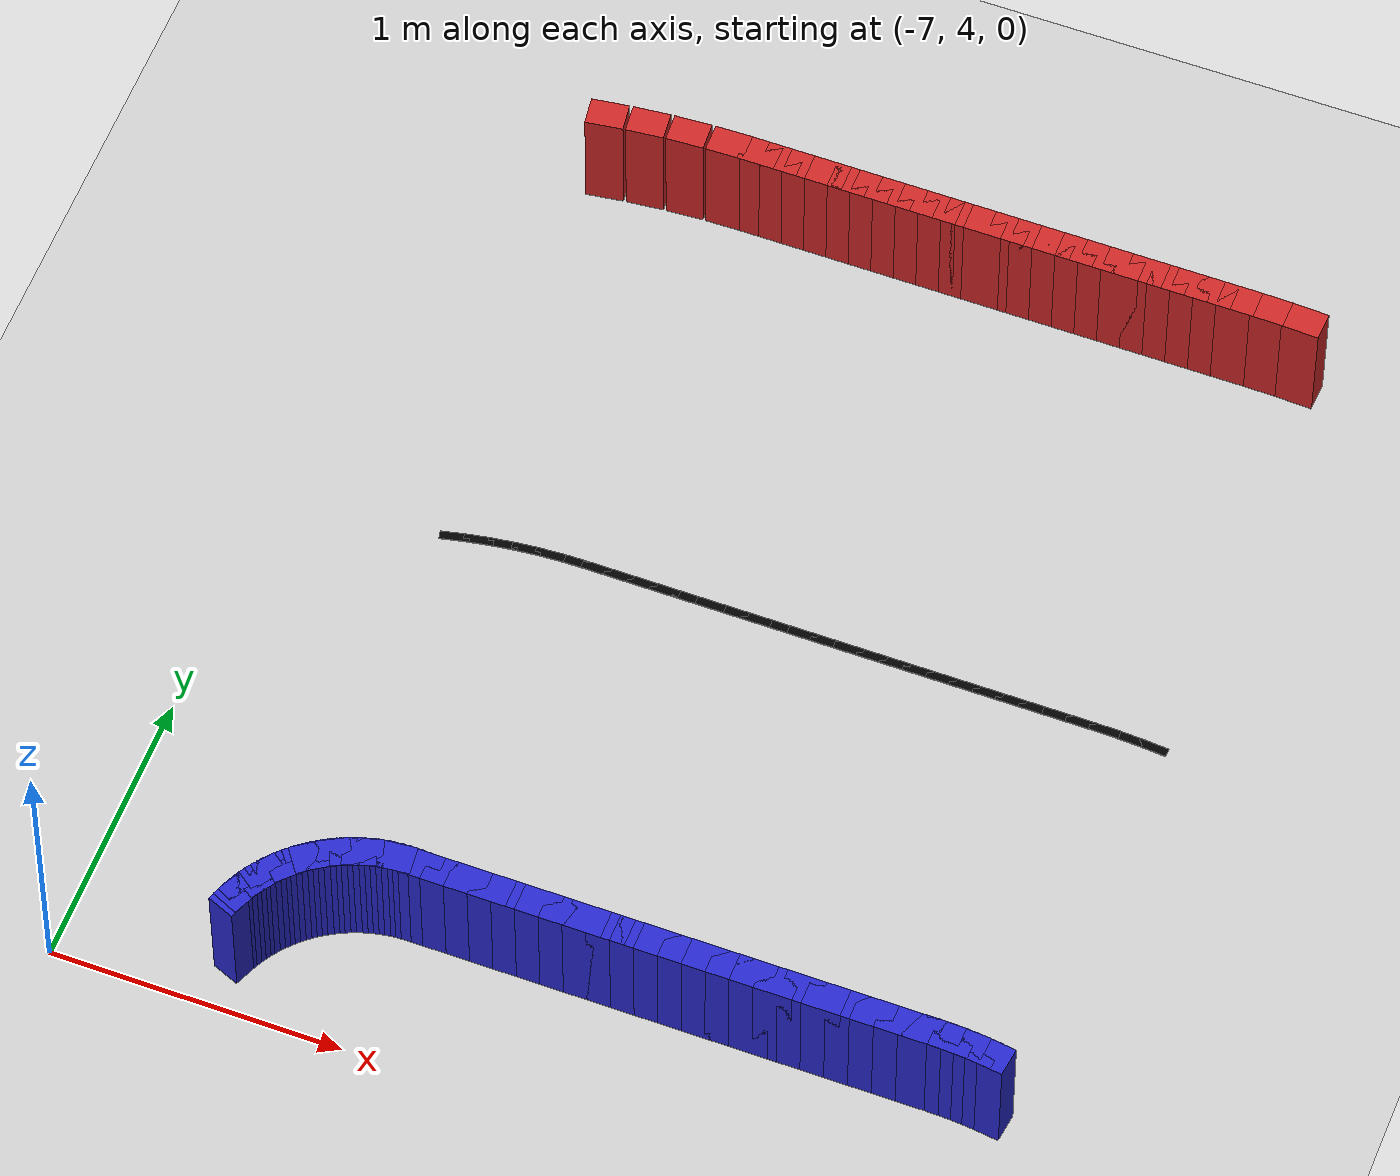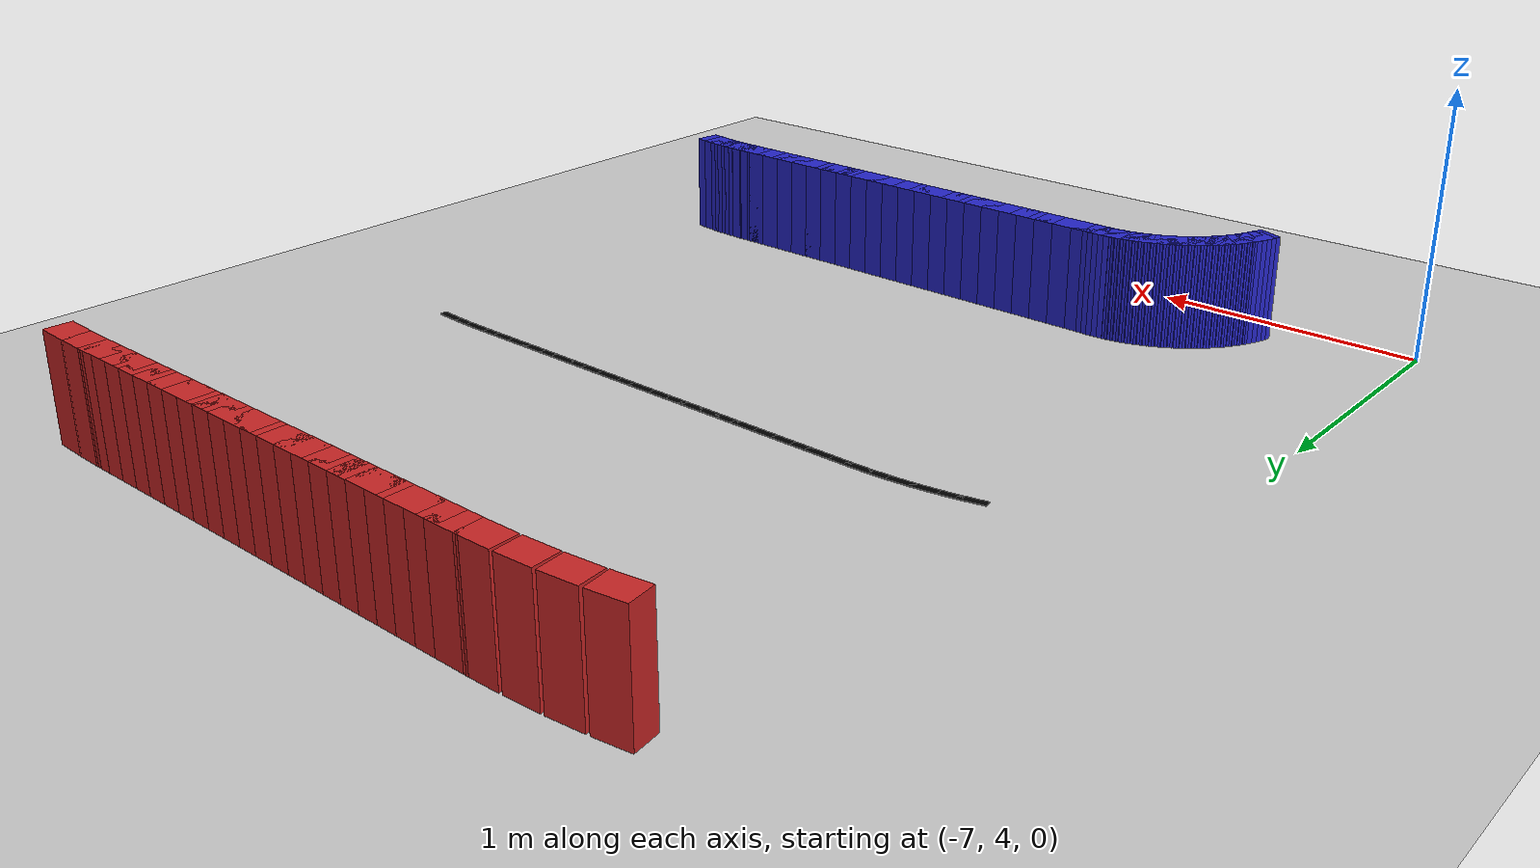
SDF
<sdf version="1.6">
 <world name="new_race_track">
  <include><uri>model://ground_plane</uri></include>
  <include><uri>model://sun</uri></include>
  <model name="iw_667">
   <static>true</static>
   <pose>-4.0152 4.4880 0.200 0 0 3.0166</pose>
   <link name="l">
    <collision name="c"><geometry><box><size>0.1333 0.1 0.4</size></box></geometry></collision>
    <visual name="v">
     <geometry><box><size>0.1333 0.1 0.4</size></box></geometry>
     <material><ambient>0.15 0.15 0.8 1</ambient><diffuse>0.15 0.15 0.8 1</diffuse></material>
    </visual>
   </link>
  </model>
  <model name="iw_668">
   <static>true</static>
   <pose>-4.0566 4.4926 0.200 0 0 3.0444</pose>
   <link name="l">
    <collision name="c"><geometry><box><size>0.1333 0.1 0.4</size></box></geometry></collision>
    <visual name="v">
     <geometry><box><size>0.1333 0.1 0.4</size></box></geometry>
     <material><ambient>0.15 0.15 0.8 1</ambient><diffuse>0.15 0.15 0.8 1</diffuse></material>
    </visual>
   </link>
  </model>
  <model name="iw_669">
   <static>true</static>
   <pose>-4.0981 4.4961 0.200 0 0 3.0722</pose>
   <link name="l">
    <collision name="c"><geometry><box><size>0.1333 0.1 0.4</size></box></geometry></collision>
    <visual name="v">
     <geometry><box><size>0.1333 0.1 0.4</size></box></geometry>
     <material><ambient>0.15 0.15 0.8 1</ambient><diffuse>0.15 0.15 0.8 1</diffuse></material>
    </visual>
   </link>
  </model>
  <model name="iw_670">
   <static>true</static>
   <pose>-4.1396 4.4984 0.200 0 0 3.0999</pose>
   <link name="l">
    <collision name="c"><geometry><box><size>0.1333 0.1 0.4</size></box></geometry></collision>
    <visual name="v">
     <geometry><box><size>0.1333 0.1 0.4</size></box></geometry>
     <material><ambient>0.15 0.15 0.8 1</ambient><diffuse>0.15 0.15 0.8 1</diffuse></material>
    </visual>
   </link>
  </model>
  <model name="iw_671">
   <static>true</static>
   <pose>-4.1813 4.4996 0.200 0 0 3.1277</pose>
   <link name="l">
    <collision name="c"><geometry><box><size>0.1333 0.1 0.4</size></box></geometry></collision>
    <visual name="v">
     <geometry><box><size>0.1333 0.1 0.4</size></box></geometry>
     <material><ambient>0.15 0.15 0.8 1</ambient><diffuse>0.15 0.15 0.8 1</diffuse></material>
    </visual>
   </link>
  </model>
  <model name="iw_672">
   <static>true</static>
   <pose>-4.2421 4.5000 0.200 0 0 3.1416</pose>
   <link name="l">
    <collision name="c"><geometry><box><size>0.1300 0.1 0.4</size></box></geometry></collision>
    <visual name="v">
     <geometry><box><size>0.1300 0.1 0.4</size></box></geometry>
     <material><ambient>0.15 0.15 0.8 1</ambient><diffuse>0.15 0.15 0.8 1</diffuse></material>
    </visual>
   </link>
  </model>
  <model name="iw_673">
   <static>true</static>
   <pose>-4.3221 4.5000 0.200 0 0 3.1416</pose>
   <link name="l">
    <collision name="c"><geometry><box><size>0.1300 0.1 0.4</size></box></geometry></collision>
    <visual name="v">
     <geometry><box><size>0.1300 0.1 0.4</size></box></geometry>
     <material><ambient>0.15 0.15 0.8 1</ambient><diffuse>0.15 0.15 0.8 1</diffuse></material>
    </visual>
   </link>
  </model>
  <model name="iw_674">
   <static>true</static>
   <pose>-4.4021 4.5000 0.200 0 0 3.1416</pose>
   <link name="l">
    <collision name="c"><geometry><box><size>0.1300 0.1 0.4</size></box></geometry></collision>
    <visual name="v">
     <geometry><box><size>0.1300 0.1 0.4</size></box></geometry>
     <material><ambient>0.15 0.15 0.8 1</ambient><diffuse>0.15 0.15 0.8 1</diffuse></material>
    </visual>
   </link>
  </model>
  <model name="iw_675">
   <static>true</static>
   <pose>-4.4821 4.5000 0.200 0 0 3.1416</pose>
   <link name="l">
    <collision name="c"><geometry><box><size>0.1300 0.1 0.4</size></box></geometry></collision>
    <visual name="v">
     <geometry><box><size>0.1300 0.1 0.4</size></box></geometry>
     <material><ambient>0.15 0.15 0.8 1</ambient><diffuse>0.15 0.15 0.8 1</diffuse></material>
    </visual>
   </link>
  </model>
  <model name="iw_676">
   <static>true</static>
   <pose>-4.5621 4.5000 0.200 0 0 3.1416</pose>
   <link name="l">
    <collision name="c"><geometry><box><size>0.1300 0.1 0.4</size></box></geometry></collision>
    <visual name="v">
     <geometry><box><size>0.1300 0.1 0.4</size></box></geometry>
     <material><ambient>0.15 0.15 0.8 1</ambient><diffuse>0.15 0.15 0.8 1</diffuse></material>
    </visual>
   </link>
  </model>
  <model name="iw_677">
   <static>true</static>
   <pose>-4.6421 4.5000 0.200 0 0 3.1416</pose>
   <link name="l">
    <collision name="c"><geometry><box><size>0.1300 0.1 0.4</size></box></geometry></collision>
    <visual name="v">
     <geometry><box><size>0.1300 0.1 0.4</size></box></geometry>
     <material><ambient>0.15 0.15 0.8 1</ambient><diffuse>0.15 0.15 0.8 1</diffuse></material>
    </visual>
   </link>
  </model>
  <model name="iw_678">
   <static>true</static>
   <pose>-4.7221 4.5000 0.200 0 0 3.1416</pose>
   <link name="l">
    <collision name="c"><geometry><box><size>0.1300 0.1 0.4</size></box></geometry></collision>
    <visual name="v">
     <geometry><box><size>0.1300 0.1 0.4</size></box></geometry>
     <material><ambient>0.15 0.15 0.8 1</ambient><diffuse>0.15 0.15 0.8 1</diffuse></material>
    </visual>
   </link>
  </model>
  <model name="iw_679">
   <static>true</static>
   <pose>-4.8021 4.5000 0.200 0 0 3.1416</pose>
   <link name="l">
    <collision name="c"><geometry><box><size>0.1300 0.1 0.4</size></box></geometry></collision>
    <visual name="v">
     <geometry><box><size>0.1300 0.1 0.4</size></box></geometry>
     <material><ambient>0.15 0.15 0.8 1</ambient><diffuse>0.15 0.15 0.8 1</diffuse></material>
    </visual>
   </link>
  </model>
  <model name="iw_680">
   <static>true</static>
   <pose>-4.8821 4.5000 0.200 0 0 3.1416</pose>
   <link name="l">
    <collision name="c"><geometry><box><size>0.1300 0.1 0.4</size></box></geometry></collision>
    <visual name="v">
     <geometry><box><size>0.1300 0.1 0.4</size></box></geometry>
     <material><ambient>0.15 0.15 0.8 1</ambient><diffuse>0.15 0.15 0.8 1</diffuse></material>
    </visual>
   </link>
  </model>
  <model name="iw_681">
   <static>true</static>
   <pose>-4.9621 4.5000 0.200 0 0 3.1416</pose>
   <link name="l">
    <collision name="c"><geometry><box><size>0.1300 0.1 0.4</size></box></geometry></collision>
    <visual name="v">
     <geometry><box><size>0.1300 0.1 0.4</size></box></geometry>
     <material><ambient>0.15 0.15 0.8 1</ambient><diffuse>0.15 0.15 0.8 1</diffuse></material>
    </visual>
   </link>
  </model>
  <model name="iw_682">
   <static>true</static>
   <pose>-5.0421 4.5000 0.200 0 0 3.1416</pose>
   <link name="l">
    <collision name="c"><geometry><box><size>0.1300 0.1 0.4</size></box></geometry></collision>
    <visual name="v">
     <geometry><box><size>0.1300 0.1 0.4</size></box></geometry>
     <material><ambient>0.15 0.15 0.8 1</ambient><diffuse>0.15 0.15 0.8 1</diffuse></material>
    </visual>
   </link>
  </model>
  <model name="iw_683">
   <static>true</static>
   <pose>-5.1221 4.5000 0.200 0 0 3.1416</pose>
   <link name="l">
    <collision name="c"><geometry><box><size>0.1300 0.1 0.4</size></box></geometry></collision>
    <visual name="v">
     <geometry><box><size>0.1300 0.1 0.4</size></box></geometry>
     <material><ambient>0.15 0.15 0.8 1</ambient><diffuse>0.15 0.15 0.8 1</diffuse></material>
    </visual>
   </link>
  </model>
  <model name="iw_684">
   <static>true</static>
   <pose>-5.2021 4.5000 0.200 0 0 3.1416</pose>
   <link name="l">
    <collision name="c"><geometry><box><size>0.1300 0.1 0.4</size></box></geometry></collision>
    <visual name="v">
     <geometry><box><size>0.1300 0.1 0.4</size></box></geometry>
     <material><ambient>0.15 0.15 0.8 1</ambient><diffuse>0.15 0.15 0.8 1</diffuse></material>
    </visual>
   </link>
  </model>
  <model name="iw_685">
   <static>true</static>
   <pose>-5.2821 4.5000 0.200 0 0 3.1416</pose>
   <link name="l">
    <collision name="c"><geometry><box><size>0.1300 0.1 0.4</size></box></geometry></collision>
    <visual name="v">
     <geometry><box><size>0.1300 0.1 0.4</size></box></geometry>
     <material><ambient>0.15 0.15 0.8 1</ambient><diffuse>0.15 0.15 0.8 1</diffuse></material>
    </visual>
   </link>
  </model>
  <model name="iw_686">
   <static>true</static>
   <pose>-5.3621 4.5000 0.200 0 0 3.1416</pose>
   <link name="l">
    <collision name="c"><geometry><box><size>0.1300 0.1 0.4</size></box></geometry></collision>
    <visual name="v">
     <geometry><box><size>0.1300 0.1 0.4</size></box></geometry>
     <material><ambient>0.15 0.15 0.8 1</ambient><diffuse>0.15 0.15 0.8 1</diffuse></material>
    </visual>
   </link>
  </model>
  <model name="iw_687">
   <static>true</static>
   <pose>-5.4421 4.5000 0.200 0 0 3.1416</pose>
   <link name="l">
    <collision name="c"><geometry><box><size>0.1300 0.1 0.4</size></box></geometry></collision>
    <visual name="v">
     <geometry><box><size>0.1300 0.1 0.4</size></box></geometry>
     <material><ambient>0.15 0.15 0.8 1</ambient><diffuse>0.15 0.15 0.8 1</diffuse></material>
    </visual>
   </link>
  </model>
  <model name="iw_688">
   <static>true</static>
   <pose>-5.5221 4.5000 0.200 0 0 3.1416</pose>
   <link name="l">
    <collision name="c"><geometry><box><size>0.1300 0.1 0.4</size></box></geometry></collision>
    <visual name="v">
     <geometry><box><size>0.1300 0.1 0.4</size></box></geometry>
     <material><ambient>0.15 0.15 0.8 1</ambient><diffuse>0.15 0.15 0.8 1</diffuse></material>
    </visual>
   </link>
  </model>
  <model name="iw_689">
   <static>true</static>
   <pose>-5.6021 4.5000 0.200 0 0 3.1416</pose>
   <link name="l">
    <collision name="c"><geometry><box><size>0.1300 0.1 0.4</size></box></geometry></collision>
    <visual name="v">
     <geometry><box><size>0.1300 0.1 0.4</size></box></geometry>
     <material><ambient>0.15 0.15 0.8 1</ambient><diffuse>0.15 0.15 0.8 1</diffuse></material>
    </visual>
   </link>
  </model>
  <model name="iw_690">
   <static>true</static>
   <pose>-5.6821 4.5000 0.200 0 0 3.1416</pose>
   <link name="l">
    <collision name="c"><geometry><box><size>0.1300 0.1 0.4</size></box></geometry></collision>
    <visual name="v">
     <geometry><box><size>0.1300 0.1 0.4</size></box></geometry>
     <material><ambient>0.15 0.15 0.8 1</ambient><diffuse>0.15 0.15 0.8 1</diffuse></material>
    </visual>
   </link>
  </model>
  <model name="iw_691">
   <static>true</static>
   <pose>-5.7621 4.5000 0.200 0 0 3.1416</pose>
   <link name="l">
    <collision name="c"><geometry><box><size>0.1300 0.1 0.4</size></box></geometry></collision>
    <visual name="v">
     <geometry><box><size>0.1300 0.1 0.4</size></box></geometry>
     <material><ambient>0.15 0.15 0.8 1</ambient><diffuse>0.15 0.15 0.8 1</diffuse></material>
    </visual>
   </link>
  </model>
  <model name="iw_692">
   <static>true</static>
   <pose>-5.8421 4.5000 0.200 0 0 3.1416</pose>
   <link name="l">
    <collision name="c"><geometry><box><size>0.1300 0.1 0.4</size></box></geometry></collision>
    <visual name="v">
     <geometry><box><size>0.1300 0.1 0.4</size></box></geometry>
     <material><ambient>0.15 0.15 0.8 1</ambient><diffuse>0.15 0.15 0.8 1</diffuse></material>
    </visual>
   </link>
  </model>
  <model name="iw_693">
   <static>true</static>
   <pose>-5.9221 4.5000 0.200 0 0 3.1416</pose>
   <link name="l">
    <collision name="c"><geometry><box><size>0.1300 0.1 0.4</size></box></geometry></collision>
    <visual name="v">
     <geometry><box><size>0.1300 0.1 0.4</size></box></geometry>
     <material><ambient>0.15 0.15 0.8 1</ambient><diffuse>0.15 0.15 0.8 1</diffuse></material>
    </visual>
   </link>
  </model>
  <model name="iw_694">
   <static>true</static>
   <pose>-5.9721 4.4995 0.200 0 0 -3.1215</pose>
   <link name="l">
    <collision name="c"><geometry><box><size>0.1305 0.1 0.4</size></box></geometry></collision>
    <visual name="v">
     <geometry><box><size>0.1305 0.1 0.4</size></box></geometry>
     <material><ambient>0.15 0.15 0.8 1</ambient><diffuse>0.15 0.15 0.8 1</diffuse></material>
    </visual>
   </link>
  </model>
  <model name="iw_695">
   <static>true</static>
   <pose>-5.9922 4.4987 0.200 0 0 -3.0812</pose>
   <link name="l">
    <collision name="c"><geometry><box><size>0.1305 0.1 0.4</size></box></geometry></collision>
    <visual name="v">
     <geometry><box><size>0.1305 0.1 0.4</size></box></geometry>
     <material><ambient>0.15 0.15 0.8 1</ambient><diffuse>0.15 0.15 0.8 1</diffuse></material>
    </visual>
   </link>
  </model>
  <model name="iw_696">
   <static>true</static>
   <pose>-6.0123 4.4971 0.200 0 0 -3.0409</pose>
   <link name="l">
    <collision name="c"><geometry><box><size>0.1305 0.1 0.4</size></box></geometry></collision>
    <visual name="v">
     <geometry><box><size>0.1305 0.1 0.4</size></box></geometry>
     <material><ambient>0.15 0.15 0.8 1</ambient><diffuse>0.15 0.15 0.8 1</diffuse></material>
    </visual>
   </link>
  </model>
  <model name="iw_697">
   <static>true</static>
   <pose>-6.0323 4.4946 0.200 0 0 -3.0006</pose>
   <link name="l">
    <collision name="c"><geometry><box><size>0.1305 0.1 0.4</size></box></geometry></collision>
    <visual name="v">
     <geometry><box><size>0.1305 0.1 0.4</size></box></geometry>
     <material><ambient>0.15 0.15 0.8 1</ambient><diffuse>0.15 0.15 0.8 1</diffuse></material>
    </visual>
   </link>
  </model>
  <model name="iw_698">
   <static>true</static>
   <pose>-6.0521 4.4914 0.200 0 0 -2.9603</pose>
   <link name="l">
    <collision name="c"><geometry><box><size>0.1305 0.1 0.4</size></box></geometry></collision>
    <visual name="v">
     <geometry><box><size>0.1305 0.1 0.4</size></box></geometry>
     <material><ambient>0.15 0.15 0.8 1</ambient><diffuse>0.15 0.15 0.8 1</diffuse></material>
    </visual>
   </link>
  </model>
  <model name="iw_699">
   <static>true</static>
   <pose>-6.0718 4.4874 0.200 0 0 -2.9201</pose>
   <link name="l">
    <collision name="c"><geometry><box><size>0.1305 0.1 0.4</size></box></geometry></collision>
    <visual name="v">
     <geometry><box><size>0.1305 0.1 0.4</size></box></geometry>
     <material><ambient>0.15 0.15 0.8 1</ambient><diffuse>0.15 0.15 0.8 1</diffuse></material>
    </visual>
   </link>
  </model>
  <model name="iw_700">
   <static>true</static>
   <pose>-6.0914 4.4826 0.200 0 0 -2.8798</pose>
   <link name="l">
    <collision name="c"><geometry><box><size>0.1305 0.1 0.4</size></box></geometry></collision>
    <visual name="v">
     <geometry><box><size>0.1305 0.1 0.4</size></box></geometry>
     <material><ambient>0.15 0.15 0.8 1</ambient><diffuse>0.15 0.15 0.8 1</diffuse></material>
    </visual>
   </link>
  </model>
  <model name="iw_701">
   <static>true</static>
   <pose>-6.1107 4.4770 0.200 0 0 -2.8395</pose>
   <link name="l">
    <collision name="c"><geometry><box><size>0.1305 0.1 0.4</size></box></geometry></collision>
    <visual name="v">
     <geometry><box><size>0.1305 0.1 0.4</size></box></geometry>
     <material><ambient>0.15 0.15 0.8 1</ambient><diffuse>0.15 0.15 0.8 1</diffuse></material>
    </visual>
   </link>
  </model>
  <model name="iw_702">
   <static>true</static>
   <pose>-6.1298 4.4706 0.200 0 0 -2.7992</pose>
   <link name="l">
    <collision name="c"><geometry><box><size>0.1305 0.1 0.4</size></box></geometry></collision>
    <visual name="v">
     <geometry><box><size>0.1305 0.1 0.4</size></box></geometry>
     <material><ambient>0.15 0.15 0.8 1</ambient><diffuse>0.15 0.15 0.8 1</diffuse></material>
    </visual>
   </link>
  </model>
  <model name="iw_703">
   <static>true</static>
   <pose>-6.1486 4.4635 0.200 0 0 -2.7590</pose>
   <link name="l">
    <collision name="c"><geometry><box><size>0.1305 0.1 0.4</size></box></geometry></collision>
    <visual name="v">
     <geometry><box><size>0.1305 0.1 0.4</size></box></geometry>
     <material><ambient>0.15 0.15 0.8 1</ambient><diffuse>0.15 0.15 0.8 1</diffuse></material>
    </visual>
   </link>
  </model>
  <model name="iw_704">
   <static>true</static>
   <pose>-6.1671 4.4556 0.200 0 0 -2.7187</pose>
   <link name="l">
    <collision name="c"><geometry><box><size>0.1305 0.1 0.4</size></box></geometry></collision>
    <visual name="v">
     <geometry><box><size>0.1305 0.1 0.4</size></box></geometry>
     <material><ambient>0.15 0.15 0.8 1</ambient><diffuse>0.15 0.15 0.8 1</diffuse></material>
    </visual>
   </link>
  </model>
  <model name="iw_705">
   <static>true</static>
   <pose>-6.1853 4.4470 0.200 0 0 -2.6784</pose>
   <link name="l">
    <collision name="c"><geometry><box><size>0.1305 0.1 0.4</size></box></geometry></collision>
    <visual name="v">
     <geometry><box><size>0.1305 0.1 0.4</size></box></geometry>
     <material><ambient>0.15 0.15 0.8 1</ambient><diffuse>0.15 0.15 0.8 1</diffuse></material>
    </visual>
   </link>
  </model>
  <model name="iw_706">
   <static>true</static>
   <pose>-6.2031 4.4376 0.200 0 0 -2.6381</pose>
   <link name="l">
    <collision name="c"><geometry><box><size>0.1305 0.1 0.4</size></box></geometry></collision>
    <visual name="v">
     <geometry><box><size>0.1305 0.1 0.4</size></box></geometry>
     <material><ambient>0.15 0.15 0.8 1</ambient><diffuse>0.15 0.15 0.8 1</diffuse></material>
    </visual>
   </link>
  </model>
  <model name="iw_707">
   <static>true</static>
   <pose>-6.2205 4.4275 0.200 0 0 -2.5979</pose>
   <link name="l">
    <collision name="c"><geometry><box><size>0.1305 0.1 0.4</size></box></geometry></collision>
    <visual name="v">
     <geometry><box><size>0.1305 0.1 0.4</size></box></geometry>
     <material><ambient>0.15 0.15 0.8 1</ambient><diffuse>0.15 0.15 0.8 1</diffuse></material>
    </visual>
   </link>
  </model>
  <model name="iw_708">
   <static>true</static>
   <pose>-6.2375 4.4168 0.200 0 0 -2.5576</pose>
   <link name="l">
    <collision name="c"><geometry><box><size>0.1305 0.1 0.4</size></box></geometry></collision>
    <visual name="v">
     <geometry><box><size>0.1305 0.1 0.4</size></box></geometry>
     <material><ambient>0.15 0.15 0.8 1</ambient><diffuse>0.15 0.15 0.8 1</diffuse></material>
    </visual>
   </link>
  </model>
  <model name="iw_709">
   <static>true</static>
   <pose>-6.2541 4.4054 0.200 0 0 -2.5173</pose>
   <link name="l">
    <collision name="c"><geometry><box><size>0.1305 0.1 0.4</size></box></geometry></collision>
    <visual name="v">
     <geometry><box><size>0.1305 0.1 0.4</size></box></geometry>
     <material><ambient>0.15 0.15 0.8 1</ambient><diffuse>0.15 0.15 0.8 1</diffuse></material>
    </visual>
   </link>
  </model>
  <model name="iw_710">
   <static>true</static>
   <pose>-6.2702 4.3933 0.200 0 0 -2.4770</pose>
   <link name="l">
    <collision name="c"><geometry><box><size>0.1305 0.1 0.4</size></box></geometry></collision>
    <visual name="v">
     <geometry><box><size>0.1305 0.1 0.4</size></box></geometry>
     <material><ambient>0.15 0.15 0.8 1</ambient><diffuse>0.15 0.15 0.8 1</diffuse></material>
    </visual>
   </link>
  </model>
  <model name="iw_711">
   <static>true</static>
   <pose>-6.2858 4.3805 0.200 0 0 -2.4367</pose>
   <link name="l">
    <collision name="c"><geometry><box><size>0.1305 0.1 0.4</size></box></geometry></collision>
    <visual name="v">
     <geometry><box><size>0.1305 0.1 0.4</size></box></geometry>
     <material><ambient>0.15 0.15 0.8 1</ambient><diffuse>0.15 0.15 0.8 1</diffuse></material>
    </visual>
   </link>
  </model>
  <model name="iw_712">
   <static>true</static>
   <pose>-6.3008 4.3672 0.200 0 0 -2.3965</pose>
   <link name="l">
    <collision name="c"><geometry><box><size>0.1305 0.1 0.4</size></box></geometry></collision>
    <visual name="v">
     <geometry><box><size>0.1305 0.1 0.4</size></box></geometry>
     <material><ambient>0.15 0.15 0.8 1</ambient><diffuse>0.15 0.15 0.8 1</diffuse></material>
    </visual>
   </link>
  </model>
  <model name="iw_713">
   <static>true</static>
   <pose>-6.3153 4.3533 0.200 0 0 -2.3562</pose>
   <link name="l">
    <collision name="c"><geometry><box><size>0.1305 0.1 0.4</size></box></geometry></collision>
    <visual name="v">
     <geometry><box><size>0.1305 0.1 0.4</size></box></geometry>
     <material><ambient>0.15 0.15 0.8 1</ambient><diffuse>0.15 0.15 0.8 1</diffuse></material>
    </visual>
   </link>
  </model>
  <model name="iw_714">
   <static>true</static>
   <pose>-6.3293 4.3388 0.200 0 0 -2.3159</pose>
   <link name="l">
    <collision name="c"><geometry><box><size>0.1305 0.1 0.4</size></box></geometry></collision>
    <visual name="v">
     <geometry><box><size>0.1305 0.1 0.4</size></box></geometry>
     <material><ambient>0.15 0.15 0.8 1</ambient><diffuse>0.15 0.15 0.8 1</diffuse></material>
    </visual>
   </link>
  </model>
  <model name="iw_715">
   <static>true</static>
   <pose>-6.3426 4.3237 0.200 0 0 -2.2756</pose>
   <link name="l">
    <collision name="c"><geometry><box><size>0.1305 0.1 0.4</size></box></geometry></collision>
    <visual name="v">
     <geometry><box><size>0.1305 0.1 0.4</size></box></geometry>
     <material><ambient>0.15 0.15 0.8 1</ambient><diffuse>0.15 0.15 0.8 1</diffuse></material>
    </visual>
   </link>
  </model>
  <model name="iw_716">
   <static>true</static>
   <pose>-6.3553 4.3081 0.200 0 0 -2.2354</pose>
   <link name="l">
    <collision name="c"><geometry><box><size>0.1305 0.1 0.4</size></box></geometry></collision>
    <visual name="v">
     <geometry><box><size>0.1305 0.1 0.4</size></box></geometry>
     <material><ambient>0.15 0.15 0.8 1</ambient><diffuse>0.15 0.15 0.8 1</diffuse></material>
    </visual>
   </link>
  </model>
  <model name="iw_717">
   <static>true</static>
   <pose>-6.3674 4.2920 0.200 0 0 -2.1951</pose>
   <link name="l">
    <collision name="c"><geometry><box><size>0.1305 0.1 0.4</size></box></geometry></collision>
    <visual name="v">
     <geometry><box><size>0.1305 0.1 0.4</size></box></geometry>
     <material><ambient>0.15 0.15 0.8 1</ambient><diffuse>0.15 0.15 0.8 1</diffuse></material>
    </visual>
   </link>
  </model>
  <model name="iw_718">
   <static>true</static>
   <pose>-6.3789 4.2755 0.200 0 0 -2.1548</pose>
   <link name="l">
    <collision name="c"><geometry><box><size>0.1305 0.1 0.4</size></box></geometry></collision>
    <visual name="v">
     <geometry><box><size>0.1305 0.1 0.4</size></box></geometry>
     <material><ambient>0.15 0.15 0.8 1</ambient><diffuse>0.15 0.15 0.8 1</diffuse></material>
    </visual>
   </link>
  </model>
  <model name="iw_719">
   <static>true</static>
   <pose>-6.3896 4.2585 0.200 0 0 -2.1145</pose>
   <link name="l">
    <collision name="c"><geometry><box><size>0.1305 0.1 0.4</size></box></geometry></collision>
    <visual name="v">
     <geometry><box><size>0.1305 0.1 0.4</size></box></geometry>
     <material><ambient>0.15 0.15 0.8 1</ambient><diffuse>0.15 0.15 0.8 1</diffuse></material>
    </visual>
   </link>
  </model>
  <model name="iw_720">
   <static>true</static>
   <pose>-6.3997 4.2410 0.200 0 0 -2.0743</pose>
   <link name="l">
    <collision name="c"><geometry><box><size>0.1305 0.1 0.4</size></box></geometry></collision>
    <visual name="v">
     <geometry><box><size>0.1305 0.1 0.4</size></box></geometry>
     <material><ambient>0.15 0.15 0.8 1</ambient><diffuse>0.15 0.15 0.8 1</diffuse></material>
    </visual>
   </link>
  </model>
  <model name="iw_721">
   <static>true</static>
   <pose>-6.4090 4.2232 0.200 0 0 -2.0340</pose>
   <link name="l">
    <collision name="c"><geometry><box><size>0.1305 0.1 0.4</size></box></geometry></collision>
    <visual name="v">
     <geometry><box><size>0.1305 0.1 0.4</size></box></geometry>
     <material><ambient>0.15 0.15 0.8 1</ambient><diffuse>0.15 0.15 0.8 1</diffuse></material>
    </visual>
   </link>
  </model>
  <model name="iw_722">
   <static>true</static>
   <pose>-6.4177 4.2050 0.200 0 0 -1.9937</pose>
   <link name="l">
    <collision name="c"><geometry><box><size>0.1305 0.1 0.4</size></box></geometry></collision>
    <visual name="v">
     <geometry><box><size>0.1305 0.1 0.4</size></box></geometry>
     <material><ambient>0.15 0.15 0.8 1</ambient><diffuse>0.15 0.15 0.8 1</diffuse></material>
    </visual>
   </link>
  </model>
  <model name="iw_723">
   <static>true</static>
   <pose>-6.4255 4.1865 0.200 0 0 -1.9534</pose>
   <link name="l">
    <collision name="c"><geometry><box><size>0.1305 0.1 0.4</size></box></geometry></collision>
    <visual name="v">
     <geometry><box><size>0.1305 0.1 0.4</size></box></geometry>
     <material><ambient>0.15 0.15 0.8 1</ambient><diffuse>0.15 0.15 0.8 1</diffuse></material>
    </visual>
   </link>
  </model>
  <model name="ow_670">
   <static>true</static>
   <pose>-4.0147 7.4958 0.200 0 0 3.0999</pose>
   <link name="l">
    <collision name="c"><geometry><box><size>0.1333 0.1 0.4</size></box></geometry></collision>
    <visual name="v">
     <geometry><box><size>0.1333 0.1 0.4</size></box></geometry>
     <material><ambient>0.8 0.15 0.15 1</ambient><diffuse>0.8 0.15 0.15 1</diffuse></material>
    </visual>
   </link>
  </model>
  <model name="ow_671">
   <static>true</static>
   <pose>-4.1396 7.4993 0.200 0 0 3.1277</pose>
   <link name="l">
    <collision name="c"><geometry><box><size>0.1333 0.1 0.4</size></box></geometry></collision>
    <visual name="v">
     <geometry><box><size>0.1333 0.1 0.4</size></box></geometry>
     <material><ambient>0.8 0.15 0.15 1</ambient><diffuse>0.8 0.15 0.15 1</diffuse></material>
    </visual>
   </link>
  </model>
  <model name="ow_672">
   <static>true</static>
   <pose>-4.2421 7.5000 0.200 0 0 3.1416</pose>
   <link name="l">
    <collision name="c"><geometry><box><size>0.1300 0.1 0.4</size></box></geometry></collision>
    <visual name="v">
     <geometry><box><size>0.1300 0.1 0.4</size></box></geometry>
     <material><ambient>0.8 0.15 0.15 1</ambient><diffuse>0.8 0.15 0.15 1</diffuse></material>
    </visual>
   </link>
  </model>
  <model name="ow_673">
   <static>true</static>
   <pose>-4.3221 7.5000 0.200 0 0 3.1416</pose>
   <link name="l">
    <collision name="c"><geometry><box><size>0.1300 0.1 0.4</size></box></geometry></collision>
    <visual name="v">
     <geometry><box><size>0.1300 0.1 0.4</size></box></geometry>
     <material><ambient>0.8 0.15 0.15 1</ambient><diffuse>0.8 0.15 0.15 1</diffuse></material>
    </visual>
   </link>
  </model>
  <model name="ow_674">
   <static>true</static>
   <pose>-4.4021 7.5000 0.200 0 0 3.1416</pose>
   <link name="l">
    <collision name="c"><geometry><box><size>0.1300 0.1 0.4</size></box></geometry></collision>
    <visual name="v">
     <geometry><box><size>0.1300 0.1 0.4</size></box></geometry>
     <material><ambient>0.8 0.15 0.15 1</ambient><diffuse>0.8 0.15 0.15 1</diffuse></material>
    </visual>
   </link>
  </model>
  <model name="ow_675">
   <static>true</static>
   <pose>-4.4821 7.5000 0.200 0 0 3.1416</pose>
   <link name="l">
    <collision name="c"><geometry><box><size>0.1300 0.1 0.4</size></box></geometry></collision>
    <visual name="v">
     <geometry><box><size>0.1300 0.1 0.4</size></box></geometry>
     <material><ambient>0.8 0.15 0.15 1</ambient><diffuse>0.8 0.15 0.15 1</diffuse></material>
    </visual>
   </link>
  </model>
  <model name="ow_676">
   <static>true</static>
   <pose>-4.5621 7.5000 0.200 0 0 3.1416</pose>
   <link name="l">
    <collision name="c"><geometry><box><size>0.1300 0.1 0.4</size></box></geometry></collision>
    <visual name="v">
     <geometry><box><size>0.1300 0.1 0.4</size></box></geometry>
     <material><ambient>0.8 0.15 0.15 1</ambient><diffuse>0.8 0.15 0.15 1</diffuse></material>
    </visual>
   </link>
  </model>
  <model name="ow_677">
   <static>true</static>
   <pose>-4.6421 7.5000 0.200 0 0 3.1416</pose>
   <link name="l">
    <collision name="c"><geometry><box><size>0.1300 0.1 0.4</size></box></geometry></collision>
    <visual name="v">
     <geometry><box><size>0.1300 0.1 0.4</size></box></geometry>
     <material><ambient>0.8 0.15 0.15 1</ambient><diffuse>0.8 0.15 0.15 1</diffuse></material>
    </visual>
   </link>
  </model>
  <model name="ow_678">
   <static>true</static>
   <pose>-4.7221 7.5000 0.200 0 0 3.1416</pose>
   <link name="l">
    <collision name="c"><geometry><box><size>0.1300 0.1 0.4</size></box></geometry></collision>
    <visual name="v">
     <geometry><box><size>0.1300 0.1 0.4</size></box></geometry>
     <material><ambient>0.8 0.15 0.15 1</ambient><diffuse>0.8 0.15 0.15 1</diffuse></material>
    </visual>
   </link>
  </model>
  <model name="ow_679">
   <static>true</static>
   <pose>-4.8021 7.5000 0.200 0 0 3.1416</pose>
   <link name="l">
    <collision name="c"><geometry><box><size>0.1300 0.1 0.4</size></box></geometry></collision>
    <visual name="v">
     <geometry><box><size>0.1300 0.1 0.4</size></box></geometry>
     <material><ambient>0.8 0.15 0.15 1</ambient><diffuse>0.8 0.15 0.15 1</diffuse></material>
    </visual>
   </link>
  </model>
  <model name="ow_680">
   <static>true</static>
   <pose>-4.8821 7.5000 0.200 0 0 3.1416</pose>
   <link name="l">
    <collision name="c"><geometry><box><size>0.1300 0.1 0.4</size></box></geometry></collision>
    <visual name="v">
     <geometry><box><size>0.1300 0.1 0.4</size></box></geometry>
     <material><ambient>0.8 0.15 0.15 1</ambient><diffuse>0.8 0.15 0.15 1</diffuse></material>
    </visual>
   </link>
  </model>
  <model name="ow_681">
   <static>true</static>
   <pose>-4.9621 7.5000 0.200 0 0 3.1416</pose>
   <link name="l">
    <collision name="c"><geometry><box><size>0.1300 0.1 0.4</size></box></geometry></collision>
    <visual name="v">
     <geometry><box><size>0.1300 0.1 0.4</size></box></geometry>
     <material><ambient>0.8 0.15 0.15 1</ambient><diffuse>0.8 0.15 0.15 1</diffuse></material>
    </visual>
   </link>
  </model>
  <model name="ow_682">
   <static>true</static>
   <pose>-5.0421 7.5000 0.200 0 0 3.1416</pose>
   <link name="l">
    <collision name="c"><geometry><box><size>0.1300 0.1 0.4</size></box></geometry></collision>
    <visual name="v">
     <geometry><box><size>0.1300 0.1 0.4</size></box></geometry>
     <material><ambient>0.8 0.15 0.15 1</ambient><diffuse>0.8 0.15 0.15 1</diffuse></material>
    </visual>
   </link>
  </model>
  <model name="ow_683">
   <static>true</static>
   <pose>-5.1221 7.5000 0.200 0 0 3.1416</pose>
   <link name="l">
    <collision name="c"><geometry><box><size>0.1300 0.1 0.4</size></box></geometry></collision>
    <visual name="v">
     <geometry><box><size>0.1300 0.1 0.4</size></box></geometry>
     <material><ambient>0.8 0.15 0.15 1</ambient><diffuse>0.8 0.15 0.15 1</diffuse></material>
    </visual>
   </link>
  </model>
  <model name="ow_684">
   <static>true</static>
   <pose>-5.2021 7.5000 0.200 0 0 3.1416</pose>
   <link name="l">
    <collision name="c"><geometry><box><size>0.1300 0.1 0.4</size></box></geometry></collision>
    <visual name="v">
     <geometry><box><size>0.1300 0.1 0.4</size></box></geometry>
     <material><ambient>0.8 0.15 0.15 1</ambient><diffuse>0.8 0.15 0.15 1</diffuse></material>
    </visual>
   </link>
  </model>
  <model name="ow_685">
   <static>true</static>
   <pose>-5.2821 7.5000 0.200 0 0 3.1416</pose>
   <link name="l">
    <collision name="c"><geometry><box><size>0.1300 0.1 0.4</size></box></geometry></collision>
    <visual name="v">
     <geometry><box><size>0.1300 0.1 0.4</size></box></geometry>
     <material><ambient>0.8 0.15 0.15 1</ambient><diffuse>0.8 0.15 0.15 1</diffuse></material>
    </visual>
   </link>
  </model>
  <model name="ow_686">
   <static>true</static>
   <pose>-5.3621 7.5000 0.200 0 0 3.1416</pose>
   <link name="l">
    <collision name="c"><geometry><box><size>0.1300 0.1 0.4</size></box></geometry></collision>
    <visual name="v">
     <geometry><box><size>0.1300 0.1 0.4</size></box></geometry>
     <material><ambient>0.8 0.15 0.15 1</ambient><diffuse>0.8 0.15 0.15 1</diffuse></material>
    </visual>
   </link>
  </model>
  <model name="ow_687">
   <static>true</static>
   <pose>-5.4421 7.5000 0.200 0 0 3.1416</pose>
   <link name="l">
    <collision name="c"><geometry><box><size>0.1300 0.1 0.4</size></box></geometry></collision>
    <visual name="v">
     <geometry><box><size>0.1300 0.1 0.4</size></box></geometry>
     <material><ambient>0.8 0.15 0.15 1</ambient><diffuse>0.8 0.15 0.15 1</diffuse></material>
    </visual>
   </link>
  </model>
  <model name="ow_688">
   <static>true</static>
   <pose>-5.5221 7.5000 0.200 0 0 3.1416</pose>
   <link name="l">
    <collision name="c"><geometry><box><size>0.1300 0.1 0.4</size></box></geometry></collision>
    <visual name="v">
     <geometry><box><size>0.1300 0.1 0.4</size></box></geometry>
     <material><ambient>0.8 0.15 0.15 1</ambient><diffuse>0.8 0.15 0.15 1</diffuse></material>
    </visual>
   </link>
  </model>
  <model name="ow_689">
   <static>true</static>
   <pose>-5.6021 7.5000 0.200 0 0 3.1416</pose>
   <link name="l">
    <collision name="c"><geometry><box><size>0.1300 0.1 0.4</size></box></geometry></collision>
    <visual name="v">
     <geometry><box><size>0.1300 0.1 0.4</size></box></geometry>
     <material><ambient>0.8 0.15 0.15 1</ambient><diffuse>0.8 0.15 0.15 1</diffuse></material>
    </visual>
   </link>
  </model>
  <model name="ow_690">
   <static>true</static>
   <pose>-5.6821 7.5000 0.200 0 0 3.1416</pose>
   <link name="l">
    <collision name="c"><geometry><box><size>0.1300 0.1 0.4</size></box></geometry></collision>
    <visual name="v">
     <geometry><box><size>0.1300 0.1 0.4</size></box></geometry>
     <material><ambient>0.8 0.15 0.15 1</ambient><diffuse>0.8 0.15 0.15 1</diffuse></material>
    </visual>
   </link>
  </model>
  <model name="ow_691">
   <static>true</static>
   <pose>-5.7621 7.5000 0.200 0 0 3.1416</pose>
   <link name="l">
    <collision name="c"><geometry><box><size>0.1300 0.1 0.4</size></box></geometry></collision>
    <visual name="v">
     <geometry><box><size>0.1300 0.1 0.4</size></box></geometry>
     <material><ambient>0.8 0.15 0.15 1</ambient><diffuse>0.8 0.15 0.15 1</diffuse></material>
    </visual>
   </link>
  </model>
  <model name="ow_692">
   <static>true</static>
   <pose>-5.8421 7.5000 0.200 0 0 3.1416</pose>
   <link name="l">
    <collision name="c"><geometry><box><size>0.1300 0.1 0.4</size></box></geometry></collision>
    <visual name="v">
     <geometry><box><size>0.1300 0.1 0.4</size></box></geometry>
     <material><ambient>0.8 0.15 0.15 1</ambient><diffuse>0.8 0.15 0.15 1</diffuse></material>
    </visual>
   </link>
  </model>
  <model name="ow_693">
   <static>true</static>
   <pose>-5.9221 7.5000 0.200 0 0 3.1416</pose>
   <link name="l">
    <collision name="c"><geometry><box><size>0.1300 0.1 0.4</size></box></geometry></collision>
    <visual name="v">
     <geometry><box><size>0.1300 0.1 0.4</size></box></geometry>
     <material><ambient>0.8 0.15 0.15 1</ambient><diffuse>0.8 0.15 0.15 1</diffuse></material>
    </visual>
   </link>
  </model>
  <model name="ow_694">
   <static>true</static>
   <pose>-6.0325 7.4989 0.200 0 0 -3.1215</pose>
   <link name="l">
    <collision name="c"><geometry><box><size>0.1305 0.1 0.4</size></box></geometry></collision>
    <visual name="v">
     <geometry><box><size>0.1305 0.1 0.4</size></box></geometry>
     <material><ambient>0.8 0.15 0.15 1</ambient><diffuse>0.8 0.15 0.15 1</diffuse></material>
    </visual>
   </link>
  </model>
  <model name="ow_695">
   <static>true</static>
   <pose>-6.1734 7.4932 0.200 0 0 -3.0812</pose>
   <link name="l">
    <collision name="c"><geometry><box><size>0.1305 0.1 0.4</size></box></geometry></collision>
    <visual name="v">
     <geometry><box><size>0.1305 0.1 0.4</size></box></geometry>
     <material><ambient>0.8 0.15 0.15 1</ambient><diffuse>0.8 0.15 0.15 1</diffuse></material>
    </visual>
   </link>
  </model>
  <model name="ow_696">
   <static>true</static>
   <pose>-6.3139 7.4819 0.200 0 0 -3.0409</pose>
   <link name="l">
    <collision name="c"><geometry><box><size>0.1305 0.1 0.4</size></box></geometry></collision>
    <visual name="v">
     <geometry><box><size>0.1305 0.1 0.4</size></box></geometry>
     <material><ambient>0.8 0.15 0.15 1</ambient><diffuse>0.8 0.15 0.15 1</diffuse></material>
    </visual>
   </link>
  </model>
  <model name="ow_697">
   <static>true</static>
   <pose>-6.4538 7.4649 0.200 0 0 -3.0006</pose>
   <link name="l">
    <collision name="c"><geometry><box><size>0.1305 0.1 0.4</size></box></geometry></collision>
    <visual name="v">
     <geometry><box><size>0.1305 0.1 0.4</size></box></geometry>
     <material><ambient>0.8 0.15 0.15 1</ambient><diffuse>0.8 0.15 0.15 1</diffuse></material>
    </visual>
   </link>
  </model>
  <model name="line_669">
   <static>true</static>
   <pose>-3.9940 5.9925 0.002 0 0 3.0722</pose>
   <link name="l">
    <visual name="v">
     <geometry><box><size>0.1033 0.03 0.002</size></box></geometry>
     <material><ambient>0 0 0 1</ambient><diffuse>0 0 0 1</diffuse></material>
    </visual>
   </link>
  </model>
  <model name="line_670">
   <static>true</static>
   <pose>-4.0772 5.9971 0.002 0 0 3.0999</pose>
   <link name="l">
    <visual name="v">
     <geometry><box><size>0.1033 0.03 0.002</size></box></geometry>
     <material><ambient>0 0 0 1</ambient><diffuse>0 0 0 1</diffuse></material>
    </visual>
   </link>
  </model>
  <model name="line_671">
   <static>true</static>
   <pose>-4.1604 5.9994 0.002 0 0 3.1277</pose>
   <link name="l">
    <visual name="v">
     <geometry><box><size>0.1033 0.03 0.002</size></box></geometry>
     <material><ambient>0 0 0 1</ambient><diffuse>0 0 0 1</diffuse></material>
    </visual>
   </link>
  </model>
  <model name="line_672">
   <static>true</static>
   <pose>-4.2421 6.0000 0.002 0 0 3.1416</pose>
   <link name="l">
    <visual name="v">
     <geometry><box><size>0.1000 0.03 0.002</size></box></geometry>
     <material><ambient>0 0 0 1</ambient><diffuse>0 0 0 1</diffuse></material>
    </visual>
   </link>
  </model>
  <model name="line_673">
   <static>true</static>
   <pose>-4.3221 6.0000 0.002 0 0 3.1416</pose>
   <link name="l">
    <visual name="v">
     <geometry><box><size>0.1000 0.03 0.002</size></box></geometry>
     <material><ambient>0 0 0 1</ambient><diffuse>0 0 0 1</diffuse></material>
    </visual>
   </link>
  </model>
  <model name="line_674">
   <static>true</static>
   <pose>-4.4021 6.0000 0.002 0 0 3.1416</pose>
   <link name="l">
    <visual name="v">
     <geometry><box><size>0.1000 0.03 0.002</size></box></geometry>
     <material><ambient>0 0 0 1</ambient><diffuse>0 0 0 1</diffuse></material>
    </visual>
   </link>
  </model>
  <model name="line_675">
   <static>true</static>
   <pose>-4.4821 6.0000 0.002 0 0 3.1416</pose>
   <link name="l">
    <visual name="v">
     <geometry><box><size>0.1000 0.03 0.002</size></box></geometry>
     <material><ambient>0 0 0 1</ambient><diffuse>0 0 0 1</diffuse></material>
    </visual>
   </link>
  </model>
  <model name="line_676">
   <static>true</static>
   <pose>-4.5621 6.0000 0.002 0 0 3.1416</pose>
   <link name="l">
    <visual name="v">
     <geometry><box><size>0.1000 0.03 0.002</size></box></geometry>
     <material><ambient>0 0 0 1</ambient><diffuse>0 0 0 1</diffuse></material>
    </visual>
   </link>
  </model>
  <model name="line_677">
   <static>true</static>
   <pose>-4.6421 6.0000 0.002 0 0 3.1416</pose>
   <link name="l">
    <visual name="v">
     <geometry><box><size>0.1000 0.03 0.002</size></box></geometry>
     <material><ambient>0 0 0 1</ambient><diffuse>0 0 0 1</diffuse></material>
    </visual>
   </link>
  </model>
  <model name="line_678">
   <static>true</static>
   <pose>-4.7221 6.0000 0.002 0 0 3.1416</pose>
   <link name="l">
    <visual name="v">
     <geometry><box><size>0.1000 0.03 0.002</size></box></geometry>
     <material><ambient>0 0 0 1</ambient><diffuse>0 0 0 1</diffuse></material>
    </visual>
   </link>
  </model>
  <model name="line_679">
   <static>true</static>
   <pose>-4.8021 6.0000 0.002 0 0 3.1416</pose>
   <link name="l">
    <visual name="v">
     <geometry><box><size>0.1000 0.03 0.002</size></box></geometry>
     <material><ambient>0 0 0 1</ambient><diffuse>0 0 0 1</diffuse></material>
    </visual>
   </link>
  </model>
  <model name="line_680">
   <static>true</static>
   <pose>-4.8821 6.0000 0.002 0 0 3.1416</pose>
   <link name="l">
    <visual name="v">
     <geometry><box><size>0.1000 0.03 0.002</size></box></geometry>
     <material><ambient>0 0 0 1</ambient><diffuse>0 0 0 1</diffuse></material>
    </visual>
   </link>
  </model>
  <model name="line_681">
   <static>true</static>
   <pose>-4.9621 6.0000 0.002 0 0 3.1416</pose>
   <link name="l">
    <visual name="v">
     <geometry><box><size>0.1000 0.03 0.002</size></box></geometry>
     <material><ambient>0 0 0 1</ambient><diffuse>0 0 0 1</diffuse></material>
    </visual>
   </link>
  </model>
  <model name="line_682">
   <static>true</static>
   <pose>-5.0421 6.0000 0.002 0 0 3.1416</pose>
   <link name="l">
    <visual name="v">
     <geometry><box><size>0.1000 0.03 0.002</size></box></geometry>
     <material><ambient>0 0 0 1</ambient><diffuse>0 0 0 1</diffuse></material>
    </visual>
   </link>
  </model>
  <model name="line_683">
   <static>true</static>
   <pose>-5.1221 6.0000 0.002 0 0 3.1416</pose>
   <link name="l">
    <visual name="v">
     <geometry><box><size>0.1000 0.03 0.002</size></box></geometry>
     <material><ambient>0 0 0 1</ambient><diffuse>0 0 0 1</diffuse></material>
    </visual>
   </link>
  </model>
  <model name="line_684">
   <static>true</static>
   <pose>-5.2021 6.0000 0.002 0 0 3.1416</pose>
   <link name="l">
    <visual name="v">
     <geometry><box><size>0.1000 0.03 0.002</size></box></geometry>
     <material><ambient>0 0 0 1</ambient><diffuse>0 0 0 1</diffuse></material>
    </visual>
   </link>
  </model>
  <model name="line_685">
   <static>true</static>
   <pose>-5.2821 6.0000 0.002 0 0 3.1416</pose>
   <link name="l">
    <visual name="v">
     <geometry><box><size>0.1000 0.03 0.002</size></box></geometry>
     <material><ambient>0 0 0 1</ambient><diffuse>0 0 0 1</diffuse></material>
    </visual>
   </link>
  </model>
  <model name="line_686">
   <static>true</static>
   <pose>-5.3621 6.0000 0.002 0 0 3.1416</pose>
   <link name="l">
    <visual name="v">
     <geometry><box><size>0.1000 0.03 0.002</size></box></geometry>
     <material><ambient>0 0 0 1</ambient><diffuse>0 0 0 1</diffuse></material>
    </visual>
   </link>
  </model>
  <model name="line_687">
   <static>true</static>
   <pose>-5.4421 6.0000 0.002 0 0 3.1416</pose>
   <link name="l">
    <visual name="v">
     <geometry><box><size>0.1000 0.03 0.002</size></box></geometry>
     <material><ambient>0 0 0 1</ambient><diffuse>0 0 0 1</diffuse></material>
    </visual>
   </link>
  </model>
  <model name="line_688">
   <static>true</static>
   <pose>-5.5221 6.0000 0.002 0 0 3.1416</pose>
   <link name="l">
    <visual name="v">
     <geometry><box><size>0.1000 0.03 0.002</size></box></geometry>
     <material><ambient>0 0 0 1</ambient><diffuse>0 0 0 1</diffuse></material>
    </visual>
   </link>
  </model>
  <model name="line_689">
   <static>true</static>
   <pose>-5.6021 6.0000 0.002 0 0 3.1416</pose>
   <link name="l">
    <visual name="v">
     <geometry><box><size>0.1000 0.03 0.002</size></box></geometry>
     <material><ambient>0 0 0 1</ambient><diffuse>0 0 0 1</diffuse></material>
    </visual>
   </link>
  </model>
  <model name="line_690">
   <static>true</static>
   <pose>-5.6821 6.0000 0.002 0 0 3.1416</pose>
   <link name="l">
    <visual name="v">
     <geometry><box><size>0.1000 0.03 0.002</size></box></geometry>
     <material><ambient>0 0 0 1</ambient><diffuse>0 0 0 1</diffuse></material>
    </visual>
   </link>
  </model>
  <model name="line_691">
   <static>true</static>
   <pose>-5.7621 6.0000 0.002 0 0 3.1416</pose>
   <link name="l">
    <visual name="v">
     <geometry><box><size>0.1000 0.03 0.002</size></box></geometry>
     <material><ambient>0 0 0 1</ambient><diffuse>0 0 0 1</diffuse></material>
    </visual>
   </link>
  </model>
  <model name="line_692">
   <static>true</static>
   <pose>-5.8421 6.0000 0.002 0 0 3.1416</pose>
   <link name="l">
    <visual name="v">
     <geometry><box><size>0.1000 0.03 0.002</size></box></geometry>
     <material><ambient>0 0 0 1</ambient><diffuse>0 0 0 1</diffuse></material>
    </visual>
   </link>
  </model>
  <model name="line_693">
   <static>true</static>
   <pose>-5.9221 6.0000 0.002 0 0 3.1416</pose>
   <link name="l">
    <visual name="v">
     <geometry><box><size>0.1000 0.03 0.002</size></box></geometry>
     <material><ambient>0 0 0 1</ambient><diffuse>0 0 0 1</diffuse></material>
    </visual>
   </link>
  </model>
  <model name="line_694">
   <static>true</static>
   <pose>-6.0023 5.9992 0.002 0 0 -3.1215</pose>
   <link name="l">
    <visual name="v">
     <geometry><box><size>0.1005 0.03 0.002</size></box></geometry>
     <material><ambient>0 0 0 1</ambient><diffuse>0 0 0 1</diffuse></material>
    </visual>
   </link>
  </model>
  <model name="line_695">
   <static>true</static>
   <pose>-6.0828 5.9959 0.002 0 0 -3.0812</pose>
   <link name="l">
    <visual name="v">
     <geometry><box><size>0.1005 0.03 0.002</size></box></geometry>
     <material><ambient>0 0 0 1</ambient><diffuse>0 0 0 1</diffuse></material>
    </visual>
   </link>
  </model>
  <model name="line_696">
   <static>true</static>
   <pose>-6.1631 5.9895 0.002 0 0 -3.0409</pose>
   <link name="l">
    <visual name="v">
     <geometry><box><size>0.1005 0.03 0.002</size></box></geometry>
     <material><ambient>0 0 0 1</ambient><diffuse>0 0 0 1</diffuse></material>
    </visual>
   </link>
  </model>
  <model name="line_697">
   <static>true</static>
   <pose>-6.2430 5.9798 0.002 0 0 -3.0006</pose>
   <link name="l">
    <visual name="v">
     <geometry><box><size>0.1005 0.03 0.002</size></box></geometry>
     <material><ambient>0 0 0 1</ambient><diffuse>0 0 0 1</diffuse></material>
    </visual>
   </link>
  </model>
  <model name="line_698">
   <static>true</static>
   <pose>-6.3225 5.9668 0.002 0 0 -2.9603</pose>
   <link name="l">
    <visual name="v">
     <geometry><box><size>0.1005 0.03 0.002</size></box></geometry>
     <material><ambient>0 0 0 1</ambient><diffuse>0 0 0 1</diffuse></material>
    </visual>
   </link>
  </model>
  <model name="line_699">
   <static>true</static>
   <pose>-6.4014 5.9507 0.002 0 0 -2.9201</pose>
   <link name="l">
    <visual name="v">
     <geometry><box><size>0.1005 0.03 0.002</size></box></geometry>
     <material><ambient>0 0 0 1</ambient><diffuse>0 0 0 1</diffuse></material>
    </visual>
   </link>
  </model>
 </world>
</sdf>
